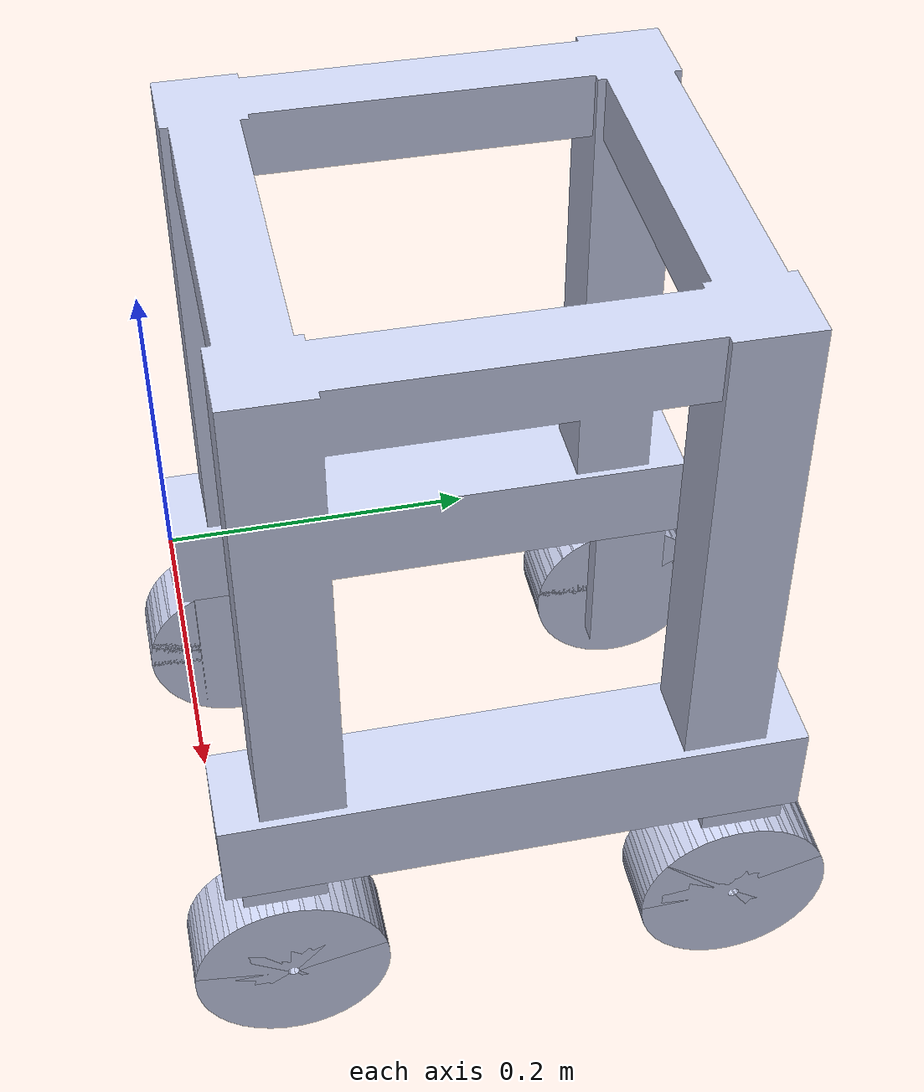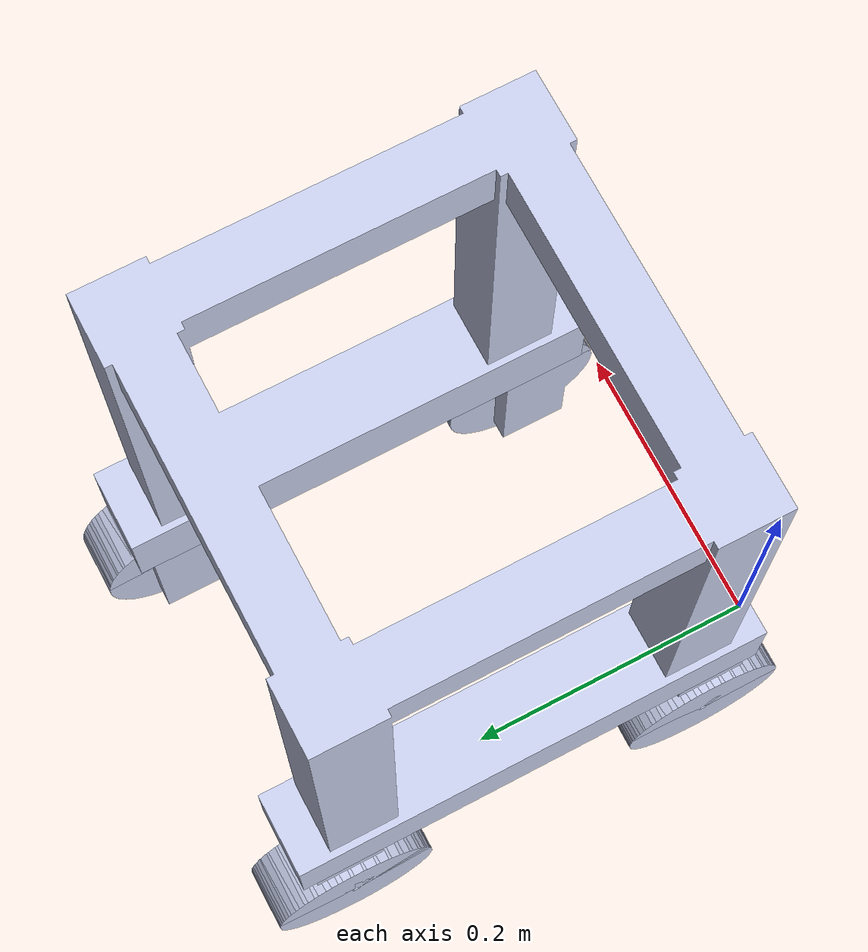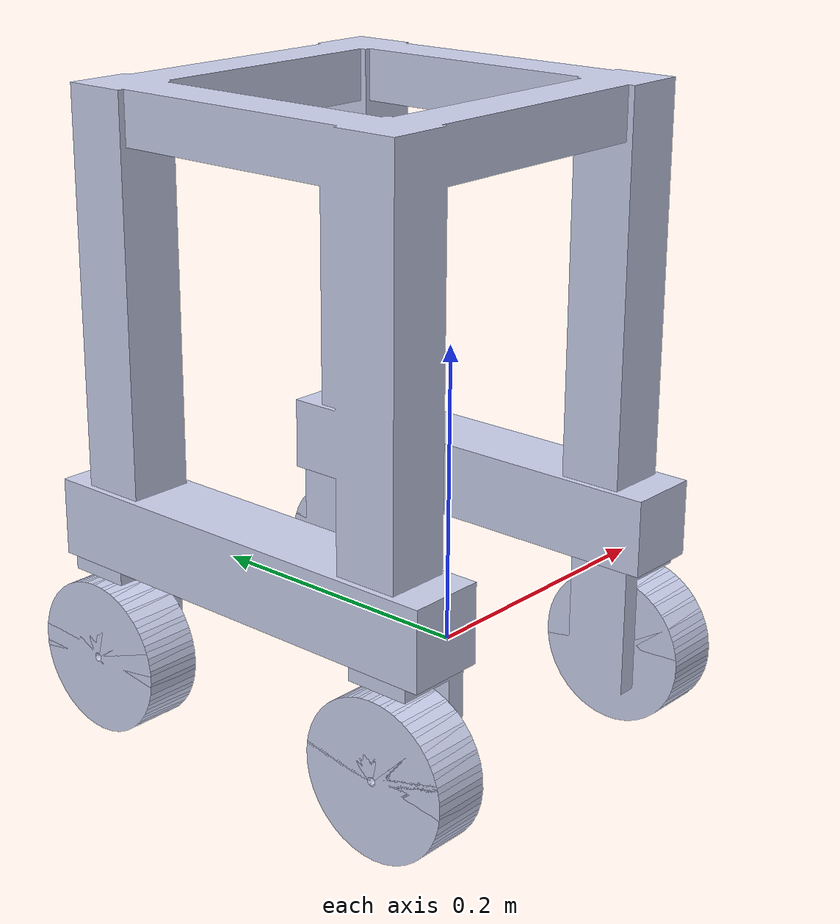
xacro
<?xml version="1.0" ?>
<!-- |    This document was autogenerated by xacro from src/to_rover/urdf/TO_URDF_1.1.urdf | -->
<!-- |    EDITING THIS FILE BY HAND IS NOT RECOMMENDED                                 | -->
<robot name="TO_URDF_1.1" xmlns:xacro="http://www.ros.org/wiki/xacro">
  <xacro:include filename="$(find to_rover)/urdf/to.transmission.xacro"/>
  <link name="base_link">
    <inertial>
      <origin rpy="0 0 0" xyz="0.125 0.138349965988052 -0.175"/>
      <mass value="6.77486725877128"/>
      <inertia ixx="0.0513980645062783" ixy="-1.2255372478021E-18" ixz="1.78031458525141E-18" iyy="0.0315144067015224" iyz="4.97458857482161E-19" izz="0.0274216662343612"/>
    </inertial>
    <visual>
      <origin rpy="0 0 0" xyz="0 0 0"/>
      <geometry>
        <mesh filename="package://to_rover/meshes/visual/base_link.dae"/>
      </geometry>
      <material name="">
        <color rgba="0.792156862745098 0.819607843137255 0.933333333333333 1"/>
      </material>
    </visual>
    <collision>
      <origin rpy="0 0 0" xyz="0 0 0"/>
      <geometry>
        <mesh filename="package://to_rover/meshes/collision/base_link.STL"/>
      </geometry>
    </collision>
  </link>
  <link name="LFS">
    <inertial>
      <origin rpy="0 0 0" xyz="0.0078747 -0.05849 0"/>
      <mass value="0.61195"/>
      <inertia ixx="0.0010504" ixy="-2.7483E-05" ixz="-7.5477E-21" iyy="0.00058666" iyz="-4.6833E-20" izz="0.00068007"/>
    </inertial>
    <visual>
      <origin rpy="0 0 0" xyz="0 0 0"/>
      <geometry>
        <mesh filename="package://to_rover/meshes/visual/LFS.dae"/>
      </geometry>
      <material name="">
        <color rgba="0.79216 0.81961 0.93333 1"/>
      </material>
    </visual>
    <collision>
      <origin rpy="0 0 0" xyz="0 0 0"/>
      <geometry>
        <mesh filename="package://to_rover/meshes/collision/LFS.STL"/>
      </geometry>
    </collision>
  </link>
  <joint name="J1" type="continuous">
    <origin rpy="1.5708 0 3.1416" xyz="0 0.315 -0.04"/>
    <parent link="base_link"/>
    <child link="LFS"/>
    <axis xyz="0 1 0"/>
    <limit effort="10" lower="-0.5" upper="0.5" velocity="1"/>
  </joint>
  <link name="LFW">
    <inertial>
      <origin rpy="0 0 0" xyz="-5.5511E-17 0.0225 2.7756E-17"/>
      <mass value="0.50721"/>
      <inertia ixx="0.00054363" ixy="-4.4347E-20" ixz="4.0658E-20" iyy="0.00091608" iyz="-6.7865E-20" izz="0.00054363"/>
    </inertial>
    <visual>
      <origin rpy="0 0 0" xyz="0 0 0"/>
      <geometry>
        <mesh filename="package://to_rover/meshes/visual/LFW.dae"/>
      </geometry>
      <material name="">
        <color rgba="0.79216 0.81961 0.93333 1"/>
      </material>
    </visual>
    <collision>
      <origin rpy="0 0 0" xyz="0 0 0"/>
      <geometry>
        <mesh filename="package://to_rover/meshes/collision/LFW.STL"/>
      </geometry>
    </collision>
  </link>
  <joint name="W1" type="continuous">
    <origin rpy="0 1.2014 1.5708" xyz="0.035 -0.065 0"/>
    <parent link="LFS"/>
    <child link="LFW"/>
    <axis xyz="0 1 0"/>
  </joint>
  <link name="LRS">
    <inertial>
      <origin rpy="0 0 0" xyz="0.0078747 -0.05849 -6.9389E-18"/>
      <mass value="0.61195"/>
      <inertia ixx="0.0010504" ixy="-2.7483E-05" ixz="-1.7742E-20" iyy="0.00058666" iyz="-5.7406E-20" izz="0.00068007"/>
    </inertial>
    <visual>
      <origin rpy="0 0 0" xyz="0 0 0"/>
      <geometry>
        <mesh filename="package://to_rover/meshes/visual/LRS.dae"/>
      </geometry>
      <material name="">
        <color rgba="0.79216 0.81961 0.93333 1"/>
      </material>
    </visual>
    <collision>
      <origin rpy="0 0 0" xyz="0 0 0"/>
      <geometry>
        <mesh filename="package://to_rover/meshes/collision/LRS.STL"/>
      </geometry>
    </collision>
  </link>
  <joint name="J2" type="continuous">
    <origin rpy="1.5708 0 3.1416" xyz="0 0.035 -0.04"/>
    <parent link="base_link"/>
    <child link="LRS"/>
    <axis xyz="0 1 0"/>
    <limit effort="10" lower="-0.5" upper="0.5" velocity="1"/>
  </joint>
  <link name="LRW">
    <inertial>
      <origin rpy="0 0 0" xyz="0 0.0225 0"/>
      <mass value="0.507206206931255"/>
      <inertia ixx="0.000543629952666506" ixy="-4.18884689413118E-20" ixz="5.42101086242752E-20" iyy="0.000916077810493713" iyz="-4.74921995675154E-20" izz="0.000543629952666506"/>
    </inertial>
    <visual>
      <origin rpy="0 0 0" xyz="0 0 0"/>
      <geometry>
        <mesh filename="package://to_rover/meshes/visual/LRW.dae"/>
      </geometry>
      <material name="">
        <color rgba="0.792156862745098 0.819607843137255 0.933333333333333 1"/>
      </material>
    </visual>
    <collision>
      <origin rpy="0 0 0" xyz="0 0 0"/>
      <geometry>
        <mesh filename="package://to_rover/meshes/collision/LRW.STL"/>
      </geometry>
    </collision>
  </link>
  <joint name="W2" type="continuous">
    <origin rpy="0 1.2014 1.5708" xyz="0.035 -0.065 0"/>
    <parent link="LRS"/>
    <child link="LRW"/>
    <axis xyz="0 1 0"/>
  </joint>
  <link name="RFS">
    <inertial>
      <origin rpy="0 0 0" xyz="0.0078747 -0.05849 0"/>
      <mass value="0.61195"/>
      <inertia ixx="0.0010504" ixy="-2.7483E-05" ixz="7.2584E-20" iyy="0.00058666" iyz="-7.1874E-20" izz="0.00068007"/>
    </inertial>
    <visual>
      <origin rpy="0 0 0" xyz="0 0 0"/>
      <geometry>
        <mesh filename="package://to_rover/meshes/visual/RFS.dae"/>
      </geometry>
      <material name="">
        <color rgba="0.79216 0.81961 0.93333 1"/>
      </material>
    </visual>
    <collision>
      <origin rpy="0 0 0" xyz="0 0 0"/>
      <geometry>
        <mesh filename="package://to_rover/meshes/collision/RFS.STL"/>
      </geometry>
    </collision>
  </link>
  <joint name="J3" type="continuous">
    <origin rpy="1.5708 0 0" xyz="0.25 0.315 -0.04"/>
    <parent link="base_link"/>
    <child link="RFS"/>
    <axis xyz="0 1 0"/>
    <limit effort="10" lower="-0.5" upper="0.5" velocity="1"/>
  </joint>
  <link name="RFW">
    <inertial>
      <origin rpy="0 0 0" xyz="-5.55111512312578E-17 0.0225 -2.77555756156289E-17"/>
      <mass value="0.507206206931255"/>
      <inertia ixx="0.000543629952666506" ixy="-1.0093304555782E-19" ixz="4.06575814682064E-20" iyy="0.000916077810493714" iyz="-4.69802858462578E-19" izz="0.000543629952666506"/>
    </inertial>
    <visual>
      <origin rpy="0 0 0" xyz="0 0 0"/>
      <geometry>
        <mesh filename="package://to_rover/meshes/visual/RFW.dae"/>
      </geometry>
      <material name="">
        <color rgba="0.792156862745098 0.819607843137255 0.933333333333333 1"/>
      </material>
    </visual>
    <collision>
      <origin rpy="0 0 0" xyz="0 0 0"/>
      <geometry>
        <mesh filename="package://to_rover/meshes/collision/RFW.STL"/>
      </geometry>
    </collision>
  </link>
  <joint name="W3" type="continuous">
    <origin rpy="0 1.2014 1.5708" xyz="0.035 -0.065 0"/>
    <parent link="RFS"/>
    <child link="RFW"/>
    <axis xyz="0 1 0"/>
  </joint>
  <link name="RRS">
    <inertial>
      <origin rpy="0 0 0" xyz="0.0078747 -0.05849 -1.3878E-17"/>
      <mass value="0.61195"/>
      <inertia ixx="0.0010504" ixy="-2.7483E-05" ixz="5.9091E-20" iyy="0.00058666" iyz="-9.7928E-20" izz="0.00068007"/>
    </inertial>
    <visual>
      <origin rpy="0 0 0" xyz="0 0 0"/>
      <geometry>
        <mesh filename="package://to_rover/meshes/visual/RRS.dae"/>
      </geometry>
      <material name="">
        <color rgba="0.79216 0.81961 0.93333 1"/>
      </material>
    </visual>
    <collision>
      <origin rpy="0 0 0" xyz="0 0 0"/>
      <geometry>
        <mesh filename="package://to_rover/meshes/collision/RRS.STL"/>
      </geometry>
    </collision>
  </link>
  <joint name="J4" type="continuous">
    <origin rpy="1.5708 0 0" xyz="0.25 0.035 -0.04"/>
    <parent link="base_link"/>
    <child link="RRS"/>
    <axis xyz="0 1 0"/>
    <limit effort="10" lower="-0.5" upper="0.5" velocity="1"/>
  </joint>
  <link name="RRW">
    <inertial>
      <origin rpy="0 0 0" xyz="0 0.0225 0"/>
      <mass value="0.507206206931255"/>
      <inertia ixx="0.000543629952666506" ixy="8.07056014185324E-20" ixz="8.13151629364128E-20" iyy="0.000916077810493713" iyz="1.19094241683827E-20" izz="0.000543629952666506"/>
    </inertial>
    <visual>
      <origin rpy="0 0 0" xyz="0 0 0"/>
      <geometry>
        <mesh filename="package://to_rover/meshes/visual/RRW.dae"/>
      </geometry>
      <material name="">
        <color rgba="0.792156862745098 0.819607843137255 0.933333333333333 1"/>
      </material>
    </visual>
    <collision>
      <origin rpy="0 0 0" xyz="0 0 0"/>
      <geometry>
        <mesh filename="package://to_rover/meshes/collision/RRW.STL"/>
      </geometry>
    </collision>
  </link>
  <joint name="W4" type="continuous">
    <origin rpy="0 1.2014 1.5708" xyz="0.035 -0.065 0"/>
    <parent link="RRS"/>
    <child link="RRW"/>
    <axis xyz="0 1 0"/>
  </joint>
  <ros2_control name="GazeboSimSystem" type="system">
  <hardware>
   <plugin>gz_ros2_control/GazeboSimSystem</plugin>
  </hardware>
  <joint name="W1">
   <command_interface name="velocity"/>
    <param name="min">-1</param>
    <param name="max">1</param>
   <state_interface name="position"/>
   <state_interface name="velocity"/>
  </joint>
  <joint name="W2">
   <command_interface name="velocity"/>
    <param name="min">-1</param>
    <param name="max">1</param>
   <state_interface name="position"/>
   <state_interface name="velocity"/>
  </joint>
  <joint name="W3">
   <command_interface name="velocity"/>
    <param name="min">-1</param>
    <param name="max">1</param>
   <state_interface name="position"/>
   <state_interface name="velocity"/>
  </joint>
  <joint name="W4">
   <command_interface name="velocity"/>
    <param name="min">-1</param>
    <param name="max">1</param>
   <state_interface name="position"/>
   <state_interface name="velocity"/>
  </joint>
  <joint name="J1">
   <command_interface name="position"/>
    <param name="min">-1</param>
    <param name="max">1</param>
   <state_interface name="position"/>
   <state_interface name="velocity"/>
  </joint>
  <joint name="J2">
   <command_interface name="position"/>
    <param name="min">-1</param>
    <param name="max">1</param>
   <state_interface name="position"/>
   <state_interface name="velocity"/>
  </joint>
  <joint name="J3">
   <command_interface name="position"/>
    <param name="min">-1</param>
    <param name="max">1</param>
   <state_interface name="position"/>
   <state_interface name="velocity"/>
  </joint>
  <joint name="J4">
   <command_interface name="position"/>
    <param name="min">-1</param>
    <param name="max">1</param>
   <state_interface name="position"/>
   <state_interface name="velocity"/>
  </joint>
 </ros2_control>
 <gazebo>
  <plugin filename="gz_ros2_control-system" name="gz_ros2_control::GazeboSimROS2ControlPlugin">
    <robotParam>robot_description</robotParam>
    <robotParam_node>robot_state_publisher</robotParam_node>
    <parameters>$(find to_rover)/config/to_control_manager.yaml</parameters>
  </plugin>
 </gazebo>
</robot>
